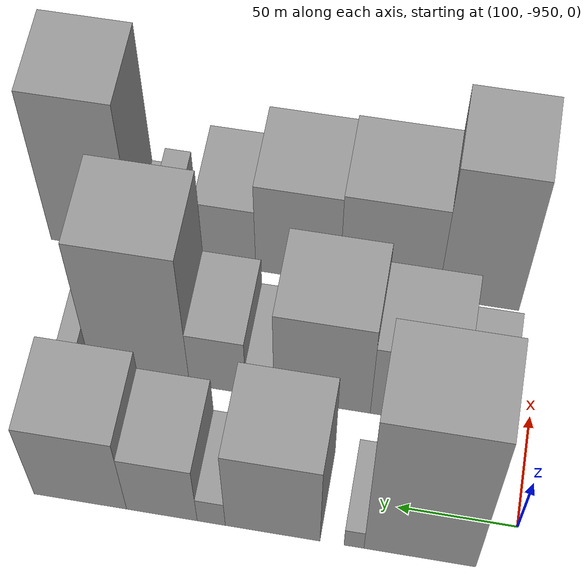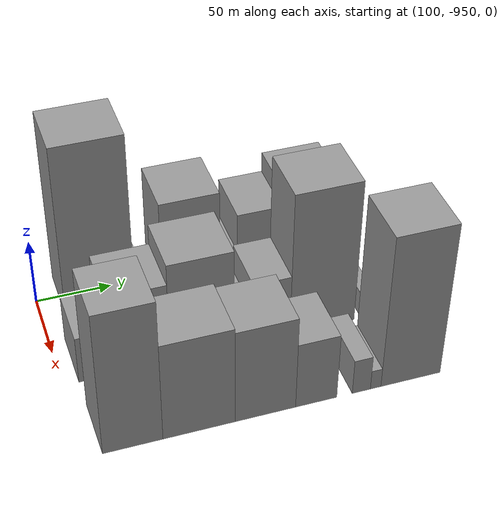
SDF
<sdf version="1.6">
 <world name="default">
  <model name="building_1">
   <static>1</static>
   <pose>100.0000 -911.9034 0 0.000000 0.000000 0.000000</pose>
   <link name="link">
    <pose>0 0 66.00 0 0 0</pose>
    <collision name="collision"><geometry><box><size>40.0000 46.1933 132.0000</size></box></geometry></collision>
    <visual name="visual">
     <cast_shadows>0</cast_shadows>
     <geometry><box><size>40.0000 46.1933 132.0000</size></box></geometry>
     <material>
      <script>
       <uri>model://grey_wall/materials/scripts</uri>
       <uri>model://grey_wall/materials/textures</uri>
       <name>vrc/grey_wall</name>
      </script>
     </material>
    </visual>
   </link>
  </model>
  <model name="building_2">
   <static>1</static>
   <pose>100.0000 -884.6747 0 0.000000 0.000000 0.000000</pose>
   <link name="link">
    <pose>0 0 9.00 0 0 0</pose>
    <collision name="collision"><geometry><box><size>40.0000 8.2640 18.0000</size></box></geometry></collision>
    <visual name="visual">
     <cast_shadows>0</cast_shadows>
     <geometry><box><size>40.0000 8.2640 18.0000</size></box></geometry>
     <material>
      <script>
       <uri>model://grey_wall/materials/scripts</uri>
       <uri>model://grey_wall/materials/textures</uri>
       <name>vrc/grey_wall</name>
      </script>
     </material>
    </visual>
   </link>
  </model>
  <model name="building_3">
   <static>1</static>
   <pose>100.0000 -850.7324 0 0.000000 0.000000 0.000000</pose>
   <link name="link">
    <pose>0 0 37.50 0 0 0</pose>
    <collision name="collision"><geometry><box><size>40.0000 39.6207 75.0000</size></box></geometry></collision>
    <visual name="visual">
     <cast_shadows>0</cast_shadows>
     <geometry><box><size>40.0000 39.6207 75.0000</size></box></geometry>
     <material>
      <script>
       <uri>model://grey_wall/materials/scripts</uri>
       <uri>model://grey_wall/materials/textures</uri>
       <name>vrc/grey_wall</name>
      </script>
     </material>
    </visual>
   </link>
  </model>
  <model name="building_4">
   <static>1</static>
   <pose>100.0000 -825.0080 0 0.000000 0.000000 0.000000</pose>
   <link name="link">
    <pose>0 0 12.00 0 0 0</pose>
    <collision name="collision"><geometry><box><size>40.0000 11.8280 24.0000</size></box></geometry></collision>
    <visual name="visual">
     <cast_shadows>0</cast_shadows>
     <geometry><box><size>40.0000 11.8280 24.0000</size></box></geometry>
     <material>
      <script>
       <uri>model://grey_wall/materials/scripts</uri>
       <uri>model://grey_wall/materials/textures</uri>
       <name>vrc/grey_wall</name>
      </script>
     </material>
    </visual>
   </link>
  </model>
  <model name="building_5">
   <static>1</static>
   <pose>100.0000 -804.1436 0 0.000000 0.000000 0.000000</pose>
   <link name="link">
    <pose>0 0 27.00 0 0 0</pose>
    <collision name="collision"><geometry><box><size>40.0000 29.9008 54.0000</size></box></geometry></collision>
    <visual name="visual">
     <cast_shadows>0</cast_shadows>
     <geometry><box><size>40.0000 29.9008 54.0000</size></box></geometry>
     <material>
      <script>
       <uri>model://grey_wall/materials/scripts</uri>
       <uri>model://grey_wall/materials/textures</uri>
       <name>vrc/grey_wall</name>
      </script>
     </material>
    </visual>
   </link>
  </model>
  <model name="building_6">
   <static>1</static>
   <pose>100.0000 -769.4569 0 0.000000 0.000000 0.000000</pose>
   <link name="link">
    <pose>0 0 34.50 0 0 0</pose>
    <collision name="collision"><geometry><box><size>40.0000 39.4728 69.0000</size></box></geometry></collision>
    <visual name="visual">
     <cast_shadows>0</cast_shadows>
     <geometry><box><size>40.0000 39.4728 69.0000</size></box></geometry>
     <material>
      <script>
       <uri>model://grey_wall/materials/scripts</uri>
       <uri>model://grey_wall/materials/textures</uri>
       <name>vrc/grey_wall</name>
      </script>
     </material>
    </visual>
   </link>
  </model>
  <model name="building_55">
   <static>1</static>
   <pose>160.0000 -929.8320 0 0.000000 0.000000 0.000000</pose>
   <link name="link">
    <pose>0 0 18.00 0 0 0</pose>
    <collision name="collision"><geometry><box><size>40.0000 20.3360 36.0000</size></box></geometry></collision>
    <visual name="visual">
     <cast_shadows>0</cast_shadows>
     <geometry><box><size>40.0000 20.3360 36.0000</size></box></geometry>
     <material>
      <script>
       <uri>model://grey_wall/materials/scripts</uri>
       <uri>model://grey_wall/materials/textures</uri>
       <name>vrc/grey_wall</name>
      </script>
     </material>
    </visual>
   </link>
  </model>
  <model name="building_56">
   <static>1</static>
   <pose>160.0000 -901.0765 0 0.000000 0.000000 0.000000</pose>
   <link name="link">
    <pose>0 0 31.50 0 0 0</pose>
    <collision name="collision"><geometry><box><size>40.0000 37.1749 63.0000</size></box></geometry></collision>
    <visual name="visual">
     <cast_shadows>0</cast_shadows>
     <geometry><box><size>40.0000 37.1749 63.0000</size></box></geometry>
     <material>
      <script>
       <uri>model://grey_wall/materials/scripts</uri>
       <uri>model://grey_wall/materials/textures</uri>
       <name>vrc/grey_wall</name>
      </script>
     </material>
    </visual>
   </link>
  </model>
  <model name="building_57">
   <static>1</static>
   <pose>160.0000 -861.5806 0 0.000000 0.000000 0.000000</pose>
   <link name="link">
    <pose>0 0 39.00 0 0 0</pose>
    <collision name="collision"><geometry><box><size>40.0000 41.8168 78.0000</size></box></geometry></collision>
    <visual name="visual">
     <cast_shadows>0</cast_shadows>
     <geometry><box><size>40.0000 41.8168 78.0000</size></box></geometry>
     <material>
      <script>
       <uri>model://grey_wall/materials/scripts</uri>
       <uri>model://grey_wall/materials/textures</uri>
       <name>vrc/grey_wall</name>
      </script>
     </material>
    </visual>
   </link>
  </model>
  <model name="building_58">
   <static>1</static>
   <pose>160.0000 -834.5997 0 0.000000 0.000000 0.000000</pose>
   <link name="link">
    <pose>0 0 13.50 0 0 0</pose>
    <collision name="collision"><geometry><box><size>40.0000 12.1451 27.0000</size></box></geometry></collision>
    <visual name="visual">
     <cast_shadows>0</cast_shadows>
     <geometry><box><size>40.0000 12.1451 27.0000</size></box></geometry>
     <material>
      <script>
       <uri>model://grey_wall/materials/scripts</uri>
       <uri>model://grey_wall/materials/textures</uri>
       <name>vrc/grey_wall</name>
      </script>
     </material>
    </visual>
   </link>
  </model>
  <model name="building_59">
   <static>1</static>
   <pose>160.0000 -816.1241 0 0.000000 0.000000 0.000000</pose>
   <link name="link">
    <pose>0 0 24.00 0 0 0</pose>
    <collision name="collision"><geometry><box><size>40.0000 24.8060 48.0000</size></box></geometry></collision>
    <visual name="visual">
     <cast_shadows>0</cast_shadows>
     <geometry><box><size>40.0000 24.8060 48.0000</size></box></geometry>
     <material>
      <script>
       <uri>model://grey_wall/materials/scripts</uri>
       <uri>model://grey_wall/materials/textures</uri>
       <name>vrc/grey_wall</name>
      </script>
     </material>
    </visual>
   </link>
  </model>
  <model name="building_60">
   <static>1</static>
   <pose>160.0000 -781.9410 0 0.000000 0.000000 0.000000</pose>
   <link name="link">
    <pose>0 0 55.50 0 0 0</pose>
    <collision name="collision"><geometry><box><size>40.0000 43.5602 111.0000</size></box></geometry></collision>
    <visual name="visual">
     <cast_shadows>0</cast_shadows>
     <geometry><box><size>40.0000 43.5602 111.0000</size></box></geometry>
     <material>
      <script>
       <uri>model://grey_wall/materials/scripts</uri>
       <uri>model://grey_wall/materials/textures</uri>
       <name>vrc/grey_wall</name>
      </script>
     </material>
    </visual>
   </link>
  </model>
  <model name="building_61">
   <static>1</static>
   <pose>160.0000 -750.7499 0 0.000000 0.000000 0.000000</pose>
   <link name="link">
    <pose>0 0 9.00 0 0 0</pose>
    <collision name="collision"><geometry><box><size>40.0000 8.8219 18.0000</size></box></geometry></collision>
    <visual name="visual">
     <cast_shadows>0</cast_shadows>
     <geometry><box><size>40.0000 8.8219 18.0000</size></box></geometry>
     <material>
      <script>
       <uri>model://grey_wall/materials/scripts</uri>
       <uri>model://grey_wall/materials/textures</uri>
       <name>vrc/grey_wall</name>
      </script>
     </material>
    </visual>
   </link>
  </model>
  <model name="building_112">
   <static>1</static>
   <pose>220.0000 -921.9320 0 0.000000 0.000000 0.000000</pose>
   <link name="link">
    <pose>0 0 54.00 0 0 0</pose>
    <collision name="collision"><geometry><box><size>40.0000 36.1359 108.0000</size></box></geometry></collision>
    <visual name="visual">
     <cast_shadows>0</cast_shadows>
     <geometry><box><size>40.0000 36.1359 108.0000</size></box></geometry>
     <material>
      <script>
       <uri>model://grey_wall/materials/scripts</uri>
       <uri>model://grey_wall/materials/textures</uri>
       <name>vrc/grey_wall</name>
      </script>
     </material>
    </visual>
   </link>
  </model>
  <model name="building_113">
   <static>1</static>
   <pose>220.0000 -881.8180 0 0.000000 0.000000 0.000000</pose>
   <link name="link">
    <pose>0 0 37.50 0 0 0</pose>
    <collision name="collision"><geometry><box><size>40.0000 44.0921 75.0000</size></box></geometry></collision>
    <visual name="visual">
     <cast_shadows>0</cast_shadows>
     <geometry><box><size>40.0000 44.0921 75.0000</size></box></geometry>
     <material>
      <script>
       <uri>model://grey_wall/materials/scripts</uri>
       <uri>model://grey_wall/materials/textures</uri>
       <name>vrc/grey_wall</name>
      </script>
     </material>
    </visual>
   </link>
  </model>
  <model name="building_114">
   <static>1</static>
   <pose>220.0000 -840.7847 0 0.000000 0.000000 0.000000</pose>
   <link name="link">
    <pose>0 0 36.00 0 0 0</pose>
    <collision name="collision"><geometry><box><size>40.0000 37.9745 72.0000</size></box></geometry></collision>
    <visual name="visual">
     <cast_shadows>0</cast_shadows>
     <geometry><box><size>40.0000 37.9745 72.0000</size></box></geometry>
     <material>
      <script>
       <uri>model://grey_wall/materials/scripts</uri>
       <uri>model://grey_wall/materials/textures</uri>
       <name>vrc/grey_wall</name>
      </script>
     </material>
    </visual>
   </link>
  </model>
  <model name="building_115">
   <static>1</static>
   <pose>220.0000 -808.6441 0 0.000000 0.000000 0.000000</pose>
   <link name="link">
    <pose>0 0 25.50 0 0 0</pose>
    <collision name="collision"><geometry><box><size>40.0000 26.3066 51.0000</size></box></geometry></collision>
    <visual name="visual">
     <cast_shadows>0</cast_shadows>
     <geometry><box><size>40.0000 26.3066 51.0000</size></box></geometry>
     <material>
      <script>
       <uri>model://grey_wall/materials/scripts</uri>
       <uri>model://grey_wall/materials/textures</uri>
       <name>vrc/grey_wall</name>
      </script>
     </material>
    </visual>
   </link>
  </model>
  <model name="building_116">
   <static>1</static>
   <pose>220.0000 -779.5999 0 0.000000 0.000000 0.000000</pose>
   <link name="link">
    <pose>0 0 13.50 0 0 0</pose>
    <collision name="collision"><geometry><box><size>40.0000 11.7818 27.0000</size></box></geometry></collision>
    <visual name="visual">
     <cast_shadows>0</cast_shadows>
     <geometry><box><size>40.0000 11.7818 27.0000</size></box></geometry>
     <material>
      <script>
       <uri>model://grey_wall/materials/scripts</uri>
       <uri>model://grey_wall/materials/textures</uri>
       <name>vrc/grey_wall</name>
      </script>
     </material>
    </visual>
   </link>
  </model>
  <model name="building_117">
   <static>1</static>
   <pose>220.0000 -770.2798 0 0.000000 0.000000 0.000000</pose>
   <link name="link">
    <pose>0 0 7.50 0 0 0</pose>
    <collision name="collision"><geometry><box><size>40.0000 6.8584 15.0000</size></box></geometry></collision>
    <visual name="visual">
     <cast_shadows>0</cast_shadows>
     <geometry><box><size>40.0000 6.8584 15.0000</size></box></geometry>
     <material>
      <script>
       <uri>model://grey_wall/materials/scripts</uri>
       <uri>model://grey_wall/materials/textures</uri>
       <name>vrc/grey_wall</name>
      </script>
     </material>
    </visual>
   </link>
  </model>
  <model name="building_118">
   <static>1</static>
   <pose>220.0000 -747.2744 0 0.000000 0.000000 0.000000</pose>
   <link name="link">
    <pose>0 0 58.50 0 0 0</pose>
    <collision name="collision"><geometry><box><size>40.0000 39.1526 117.0000</size></box></geometry></collision>
    <visual name="visual">
     <cast_shadows>0</cast_shadows>
     <geometry><box><size>40.0000 39.1526 117.0000</size></box></geometry>
     <material>
      <script>
       <uri>model://grey_wall/materials/scripts</uri>
       <uri>model://grey_wall/materials/textures</uri>
       <name>vrc/grey_wall</name>
      </script>
     </material>
    </visual>
   </link>
  </model>
 </world>
</sdf>
